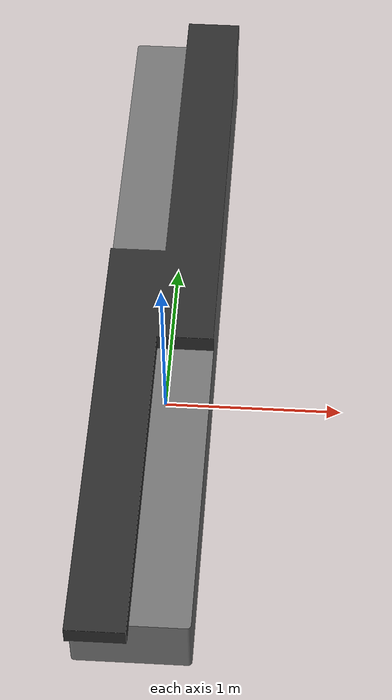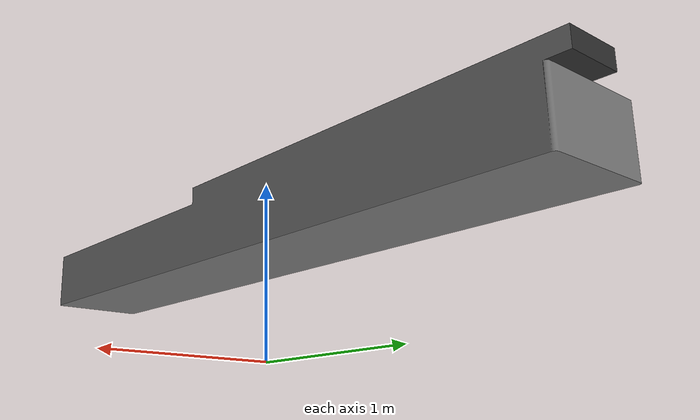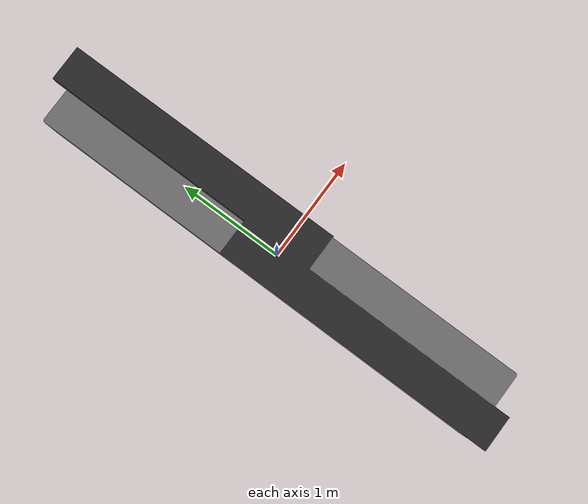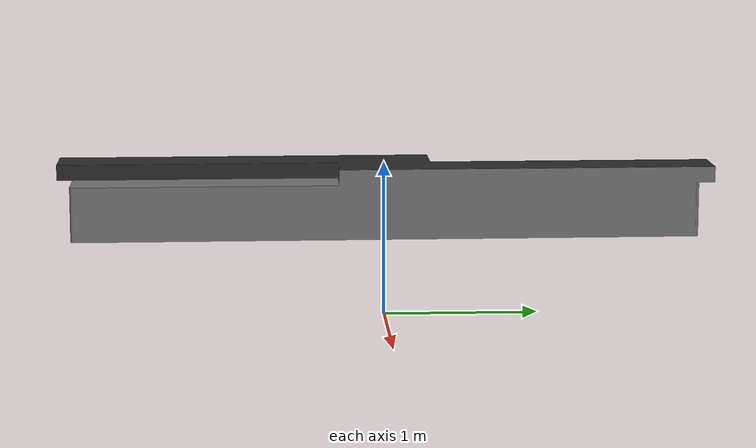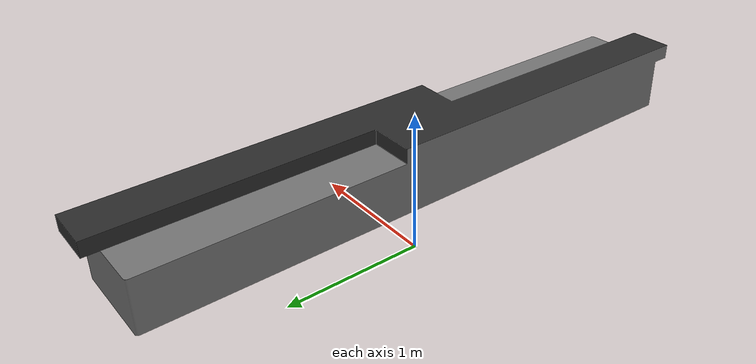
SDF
<?xml version="1.0" ?>
<sdf version="1.6">
  <model name="platform">
    <pose>0 0 1 0 0 0</pose>
    <static>true</static>
    <link name="link">
      <collision name="collision">
        <geometry>
          <mesh>
            <uri>model://platform/meshes/platform.dae</uri>
          </mesh>
        </geometry>
      </collision>

      <visual name="visual">
        <geometry>
          <mesh>
            <uri>model://platform/meshes/platform.dae</uri>
          </mesh>
        </geometry>
      </visual>
    </link>
  </model>
</sdf>
